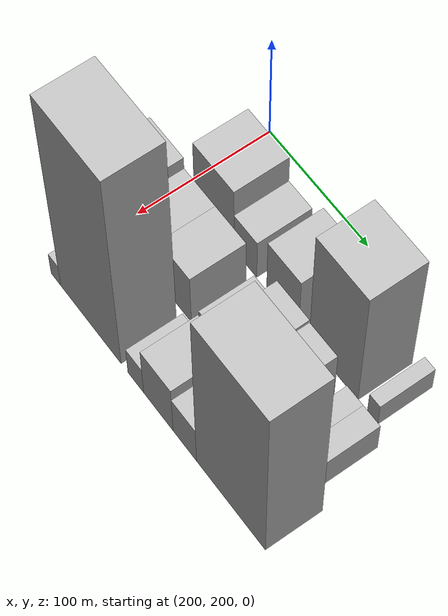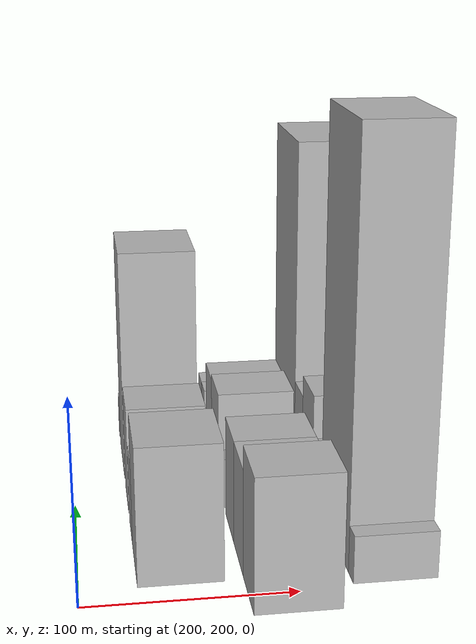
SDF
<sdf version="1.6">
 <world name="default">
  <model name="building_182">
   <static>1</static>
   <pose>247.0000 234.1974 0 0.000000 0.000000 0.000000</pose>
   <link name="link">
    <pose>0 0 34.50 0 0 0</pose>
    <collision name="collision"><geometry><box><size>40.0000 41.0079 69.0000</size></box></geometry></collision>
    <visual name="visual">
     <cast_shadows>0</cast_shadows>
     <geometry><box><size>40.0000 41.0079 69.0000</size></box></geometry>
     <material>
      <script>
       <uri>model://HANNAS_wall/materials/scripts</uri>
       <uri>model://HANNAS_wall/materials/textures</uri>
       <name>vrc/HANNAS_wall</name>
      </script>
     </material>
    </visual>
   </link>
  </model>
  <model name="building_183">
   <static>1</static>
   <pose>247.0000 266.2529 0 0.000000 0.000000 0.000000</pose>
   <link name="link">
    <pose>0 0 21.00 0 0 0</pose>
    <collision name="collision"><geometry><box><size>40.0000 23.1032 42.0000</size></box></geometry></collision>
    <visual name="visual">
     <cast_shadows>0</cast_shadows>
     <geometry><box><size>40.0000 23.1032 42.0000</size></box></geometry>
     <material>
      <script>
       <uri>model://HANNAS_wall/materials/scripts</uri>
       <uri>model://HANNAS_wall/materials/textures</uri>
       <name>vrc/HANNAS_wall</name>
      </script>
     </material>
    </visual>
   </link>
  </model>
  <model name="building_184">
   <static>1</static>
   <pose>247.0000 303.8590 0 0.000000 0.000000 0.000000</pose>
   <link name="link">
    <pose>0 0 28.50 0 0 0</pose>
    <collision name="collision"><geometry><box><size>40.0000 32.1091 57.0000</size></box></geometry></collision>
    <visual name="visual">
     <cast_shadows>0</cast_shadows>
     <geometry><box><size>40.0000 32.1091 57.0000</size></box></geometry>
     <material>
      <script>
       <uri>model://HANNAS_wall/materials/scripts</uri>
       <uri>model://HANNAS_wall/materials/textures</uri>
       <name>vrc/HANNAS_wall</name>
      </script>
     </material>
    </visual>
   </link>
  </model>
  <model name="building_185">
   <static>1</static>
   <pose>247.0000 353.5766 0 0.000000 0.000000 0.000000</pose>
   <link name="link">
    <pose>0 0 63.00 0 0 0</pose>
    <collision name="collision"><geometry><box><size>40.0000 47.3261 126.0000</size></box></geometry></collision>
    <visual name="visual">
     <cast_shadows>0</cast_shadows>
     <geometry><box><size>40.0000 47.3261 126.0000</size></box></geometry>
     <material>
      <script>
       <uri>model://HANNAS_wall/materials/scripts</uri>
       <uri>model://HANNAS_wall/materials/textures</uri>
       <name>vrc/HANNAS_wall</name>
      </script>
     </material>
    </visual>
   </link>
  </model>
  <model name="building_186">
   <static>1</static>
   <pose>247.0000 391.2234 0 0.000000 0.000000 0.000000</pose>
   <link name="link">
    <pose>0 0 12.00 0 0 0</pose>
    <collision name="collision"><geometry><box><size>40.0000 9.9675 24.0000</size></box></geometry></collision>
    <visual name="visual">
     <cast_shadows>0</cast_shadows>
     <geometry><box><size>40.0000 9.9675 24.0000</size></box></geometry>
     <material>
      <script>
       <uri>model://HANNAS_wall/materials/scripts</uri>
       <uri>model://HANNAS_wall/materials/textures</uri>
       <name>vrc/HANNAS_wall</name>
      </script>
     </material>
    </visual>
   </link>
  </model>
  <model name="building_230">
   <static>1</static>
   <pose>296.0000 200.2010 0 0.000000 0.000000 0.000000</pose>
   <link name="link">
    <pose>0 0 33.00 0 0 0</pose>
    <collision name="collision"><geometry><box><size>40.0000 34.3352 66.0000</size></box></geometry></collision>
    <visual name="visual">
     <cast_shadows>0</cast_shadows>
     <geometry><box><size>40.0000 34.3352 66.0000</size></box></geometry>
     <material>
      <script>
       <uri>model://HANNAS_wall/materials/scripts</uri>
       <uri>model://HANNAS_wall/materials/textures</uri>
       <name>vrc/HANNAS_wall</name>
      </script>
     </material>
    </visual>
   </link>
  </model>
  <model name="building_231">
   <static>1</static>
   <pose>296.0000 233.0119 0 0.000000 0.000000 0.000000</pose>
   <link name="link">
    <pose>0 0 27.00 0 0 0</pose>
    <collision name="collision"><geometry><box><size>40.0000 31.2866 54.0000</size></box></geometry></collision>
    <visual name="visual">
     <cast_shadows>0</cast_shadows>
     <geometry><box><size>40.0000 31.2866 54.0000</size></box></geometry>
     <material>
      <script>
       <uri>model://HANNAS_wall/materials/scripts</uri>
       <uri>model://HANNAS_wall/materials/textures</uri>
       <name>vrc/HANNAS_wall</name>
      </script>
     </material>
    </visual>
   </link>
  </model>
  <model name="building_232">
   <static>1</static>
   <pose>296.0000 263.9653 0 0.000000 0.000000 0.000000</pose>
   <link name="link">
    <pose>0 0 27.00 0 0 0</pose>
    <collision name="collision"><geometry><box><size>40.0000 30.6203 54.0000</size></box></geometry></collision>
    <visual name="visual">
     <cast_shadows>0</cast_shadows>
     <geometry><box><size>40.0000 30.6203 54.0000</size></box></geometry>
     <material>
      <script>
       <uri>model://HANNAS_wall/materials/scripts</uri>
       <uri>model://HANNAS_wall/materials/textures</uri>
       <name>vrc/HANNAS_wall</name>
      </script>
     </material>
    </visual>
   </link>
  </model>
  <model name="building_233">
   <static>1</static>
   <pose>296.0000 293.6484 0 0.000000 0.000000 0.000000</pose>
   <link name="link">
    <pose>0 0 13.50 0 0 0</pose>
    <collision name="collision"><geometry><box><size>40.0000 12.7459 27.0000</size></box></geometry></collision>
    <visual name="visual">
     <cast_shadows>0</cast_shadows>
     <geometry><box><size>40.0000 12.7459 27.0000</size></box></geometry>
     <material>
      <script>
       <uri>model://HANNAS_wall/materials/scripts</uri>
       <uri>model://HANNAS_wall/materials/textures</uri>
       <name>vrc/HANNAS_wall</name>
      </script>
     </material>
    </visual>
   </link>
  </model>
  <model name="building_234">
   <static>1</static>
   <pose>296.0000 324.5203 0 0.000000 0.000000 0.000000</pose>
   <link name="link">
    <pose>0 0 27.00 0 0 0</pose>
    <collision name="collision"><geometry><box><size>40.0000 30.9978 54.0000</size></box></geometry></collision>
    <visual name="visual">
     <cast_shadows>0</cast_shadows>
     <geometry><box><size>40.0000 30.9978 54.0000</size></box></geometry>
     <material>
      <script>
       <uri>model://HANNAS_wall/materials/scripts</uri>
       <uri>model://HANNAS_wall/materials/textures</uri>
       <name>vrc/HANNAS_wall</name>
      </script>
     </material>
    </visual>
   </link>
  </model>
  <model name="building_235">
   <static>1</static>
   <pose>296.0000 353.2343 0 0.000000 0.000000 0.000000</pose>
   <link name="link">
    <pose>0 0 25.50 0 0 0</pose>
    <collision name="collision"><geometry><box><size>40.0000 26.4303 51.0000</size></box></geometry></collision>
    <visual name="visual">
     <cast_shadows>0</cast_shadows>
     <geometry><box><size>40.0000 26.4303 51.0000</size></box></geometry>
     <material>
      <script>
       <uri>model://HANNAS_wall/materials/scripts</uri>
       <uri>model://HANNAS_wall/materials/textures</uri>
       <name>vrc/HANNAS_wall</name>
      </script>
     </material>
    </visual>
   </link>
  </model>
  <model name="building_236">
   <static>1</static>
   <pose>296.0000 384.0316 0 0.000000 0.000000 0.000000</pose>
   <link name="link">
    <pose>0 0 15.00 0 0 0</pose>
    <collision name="collision"><geometry><box><size>40.0000 15.1642 30.0000</size></box></geometry></collision>
    <visual name="visual">
     <cast_shadows>0</cast_shadows>
     <geometry><box><size>40.0000 15.1642 30.0000</size></box></geometry>
     <material>
      <script>
       <uri>model://HANNAS_wall/materials/scripts</uri>
       <uri>model://HANNAS_wall/materials/textures</uri>
       <name>vrc/HANNAS_wall</name>
      </script>
     </material>
    </visual>
   </link>
  </model>
  <model name="building_237">
   <static>1</static>
   <pose>296.0000 399.5666 0 0.000000 0.000000 0.000000</pose>
   <link name="link">
    <pose>0 0 15.00 0 0 0</pose>
    <collision name="collision"><geometry><box><size>40.0000 15.9059 30.0000</size></box></geometry></collision>
    <visual name="visual">
     <cast_shadows>0</cast_shadows>
     <geometry><box><size>40.0000 15.9059 30.0000</size></box></geometry>
     <material>
      <script>
       <uri>model://HANNAS_wall/materials/scripts</uri>
       <uri>model://HANNAS_wall/materials/textures</uri>
       <name>vrc/HANNAS_wall</name>
      </script>
     </material>
    </visual>
   </link>
  </model>
  <model name="building_280">
   <static>1</static>
   <pose>345.0000 208.4263 0 0.000000 0.000000 0.000000</pose>
   <link name="link">
    <pose>0 0 12.00 0 0 0</pose>
    <collision name="collision"><geometry><box><size>40.0000 10.3938 24.0000</size></box></geometry></collision>
    <visual name="visual">
     <cast_shadows>0</cast_shadows>
     <geometry><box><size>40.0000 10.3938 24.0000</size></box></geometry>
     <material>
      <script>
       <uri>model://HANNAS_wall/materials/scripts</uri>
       <uri>model://HANNAS_wall/materials/textures</uri>
       <name>vrc/HANNAS_wall</name>
      </script>
     </material>
    </visual>
   </link>
  </model>
  <model name="building_281">
   <static>1</static>
   <pose>345.0000 245.4416 0 0.000000 0.000000 0.000000</pose>
   <link name="link">
    <pose>0 0 105.00 0 0 0</pose>
    <collision name="collision"><geometry><box><size>40.0000 63.6369 210.0000</size></box></geometry></collision>
    <visual name="visual">
     <cast_shadows>0</cast_shadows>
     <geometry><box><size>40.0000 63.6369 210.0000</size></box></geometry>
     <material>
      <script>
       <uri>model://HANNAS_wall/materials/scripts</uri>
       <uri>model://HANNAS_wall/materials/textures</uri>
       <name>vrc/HANNAS_wall</name>
      </script>
     </material>
    </visual>
   </link>
  </model>
  <model name="building_282">
   <static>1</static>
   <pose>345.0000 292.3107 0 0.000000 0.000000 0.000000</pose>
   <link name="link">
    <pose>0 0 15.00 0 0 0</pose>
    <collision name="collision"><geometry><box><size>40.0000 16.1014 30.0000</size></box></geometry></collision>
    <visual name="visual">
     <cast_shadows>0</cast_shadows>
     <geometry><box><size>40.0000 16.1014 30.0000</size></box></geometry>
     <material>
      <script>
       <uri>model://HANNAS_wall/materials/scripts</uri>
       <uri>model://HANNAS_wall/materials/textures</uri>
       <name>vrc/HANNAS_wall</name>
      </script>
     </material>
    </visual>
   </link>
  </model>
  <model name="building_283">
   <static>1</static>
   <pose>345.0000 315.2668 0 0.000000 0.000000 0.000000</pose>
   <link name="link">
    <pose>0 0 27.00 0 0 0</pose>
    <collision name="collision"><geometry><box><size>40.0000 29.8107 54.0000</size></box></geometry></collision>
    <visual name="visual">
     <cast_shadows>0</cast_shadows>
     <geometry><box><size>40.0000 29.8107 54.0000</size></box></geometry>
     <material>
      <script>
       <uri>model://HANNAS_wall/materials/scripts</uri>
       <uri>model://HANNAS_wall/materials/textures</uri>
       <name>vrc/HANNAS_wall</name>
      </script>
     </material>
    </visual>
   </link>
  </model>
  <model name="building_284">
   <static>1</static>
   <pose>345.0000 341.7778 0 0.000000 0.000000 0.000000</pose>
   <link name="link">
    <pose>0 0 21.00 0 0 0</pose>
    <collision name="collision"><geometry><box><size>40.0000 23.2115 42.0000</size></box></geometry></collision>
    <visual name="visual">
     <cast_shadows>0</cast_shadows>
     <geometry><box><size>40.0000 23.2115 42.0000</size></box></geometry>
     <material>
      <script>
       <uri>model://HANNAS_wall/materials/scripts</uri>
       <uri>model://HANNAS_wall/materials/textures</uri>
       <name>vrc/HANNAS_wall</name>
      </script>
     </material>
    </visual>
   </link>
  </model>
  <model name="building_285">
   <static>1</static>
   <pose>345.0000 386.6816 0 0.000000 0.000000 0.000000</pose>
   <link name="link">
    <pose>0 0 88.50 0 0 0</pose>
    <collision name="collision"><geometry><box><size>40.0000 66.5961 177.0000</size></box></geometry></collision>
    <visual name="visual">
     <cast_shadows>0</cast_shadows>
     <geometry><box><size>40.0000 66.5961 177.0000</size></box></geometry>
     <material>
      <script>
       <uri>model://HANNAS_wall/materials/scripts</uri>
       <uri>model://HANNAS_wall/materials/textures</uri>
       <name>vrc/HANNAS_wall</name>
      </script>
     </material>
    </visual>
   </link>
  </model>
 </world>
</sdf>
